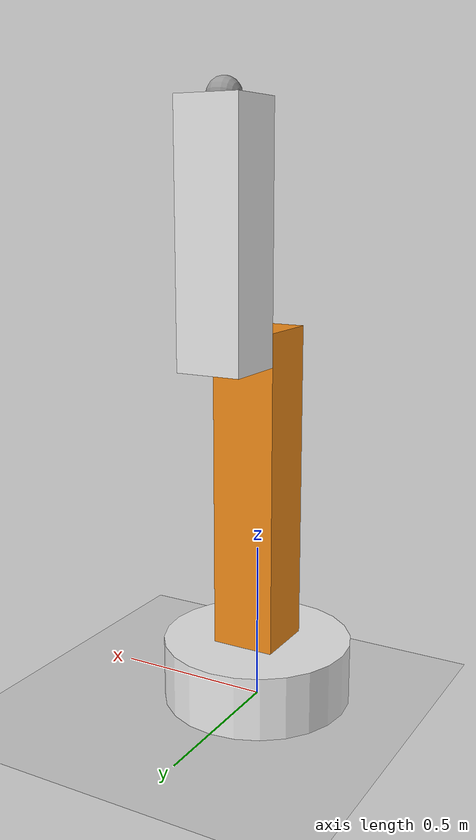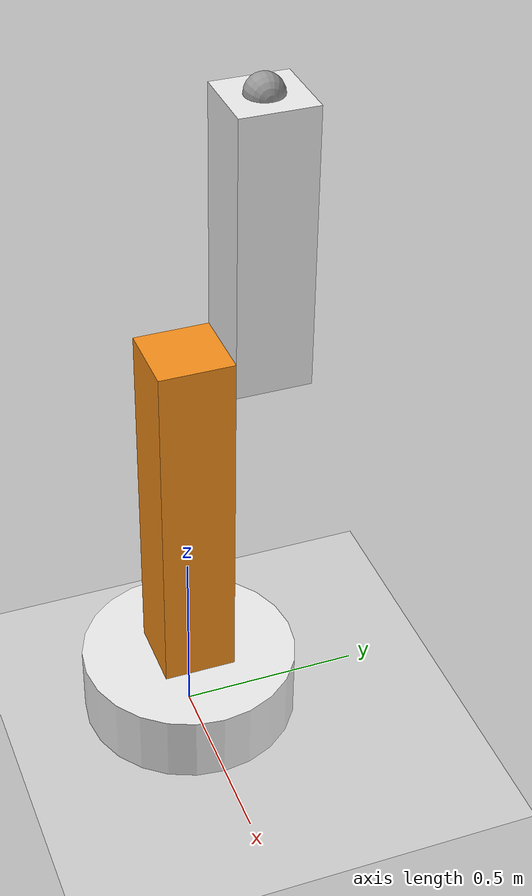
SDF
<sdf version="1.6">
 <world name="default">
  <light name="sun" type="directional">
   <pose>0 0 10 0 -0 0</pose>
   <diffuse>0.8 0.8 0.8 1</diffuse>
   <specular>0.2 0.2 0.2 1</specular>
   <attenuation>
    <range>1000</range>
    <constant>0.9</constant>
    <linear>0.01</linear>
    <quadratic>0.001</quadratic>
   </attenuation>
   <direction>-0.5 0.1 -0.9</direction>
  </light>
  <model name="ground_plane">
   <static>1</static>
   <link name="link">
    <collision name="collision">
     <geometry><plane><normal>0 0 1</normal><size>100 100</size></plane></geometry>
     <surface><friction><ode><mu>100</mu><mu2>50</mu2></ode></friction></surface>
    </collision>
    <visual name="visual">
     <cast_shadows>0</cast_shadows>
     <geometry><plane><normal>0 0 1</normal><size>100 100</size></plane></geometry>
     <material>
      <script><uri>file://media/materials/scripts/gazebo.material</uri><name>Gazebo/Grey</name></script>
     </material>
    </visual>
   </link>
  </model>
  <gravity>0 0 -9.8</gravity>
  <magnetic_field>6e-06 2.3e-05 -4.2e-05</magnetic_field>
  <atmosphere type="adiabatic"/>
  <physics name="default_physics" default="0" type="ode">
   <max_step_size>0.001</max_step_size>
   <real_time_factor>1</real_time_factor>
   <real_time_update_rate>1000</real_time_update_rate>
  </physics>
  <scene><ambient>0.4 0.4 0.4 1</ambient><background>0.7 0.7 0.7 1</background><shadows>1</shadows></scene>
  <spherical_coordinates>
   <surface_model>EARTH_WGS84</surface_model>
   <latitude_deg>0</latitude_deg>
   <longitude_deg>0</longitude_deg>
   <elevation>0</elevation>
   <heading_deg>0</heading_deg>
  </spherical_coordinates>
  <model name="simple_arm">
   <link name="base_link">
    <inertial>
     <pose>0 0 0.1 0 -0 0</pose>
     <mass>50</mass>
     <inertia><ixx>1.66667</ixx><ixy>0</ixy><ixz>0</ixz><iyy>1.66667</iyy><iyz>0</iyz><izz>3</izz></inertia>
    </inertial>
    <collision name="base_link_collision">
     <pose>0 0 0.1 0 -0 0</pose>
     <geometry><cylinder><length>0.2</length><radius>0.3</radius></cylinder></geometry>
    </collision>
    <visual name="base_link_visual">
     <pose>0 0 0.1 0 -0 0</pose>
     <geometry><cylinder><length>0.2</length><radius>0.3</radius></cylinder></geometry>
     <material>
      <script><name>Gazebo/White</name><uri>file://media/materials/scripts/gazebo.material</uri></script>
     </material>
    </visual>
   </link>
   <joint name="fixed_base_joint" type="revolute">
    <child>base_link</child>
    <parent>world</parent>
    <axis>
     <limit><lower>0</lower><upper>0</upper></limit>
     <dynamics>
      <damping>0</damping>
      <friction>0</friction>
      <spring_reference>0</spring_reference>
      <spring_stiffness>0</spring_stiffness>
     </dynamics>
     <use_parent_model_frame>1</use_parent_model_frame>
     <xyz>0 0 1</xyz>
    </axis>
   </joint>
   <link name="link_1">
    <pose>0 0 0.2 0 -0 0</pose>
    <inertial>
     <pose>0 0 0.5 0 -0 0</pose>
     <mass>10</mass>
     <inertia>
      <ixx>0.866667</ixx>
      <ixy>0</ixy>
      <ixz>0</ixz>
      <iyy>0.866667</iyy>
      <iyz>0</iyz>
      <izz>0.0666667</izz>
     </inertia>
    </inertial>
    <collision name="link_1_collision">
     <pose>0 0 0.5 0 -0 0</pose>
     <geometry><box><size>0.2 0.2 1</size></box></geometry>
     <surface><friction><ode><mu>0.2</mu><mu2>0.2</mu2></ode></friction></surface>
    </collision>
    <visual name="link_1_visual">
     <pose>0 0 0.5 0 -0 0</pose>
     <geometry><box><size>0.2 0.2 1</size></box></geometry>
     <material>
      <script><name>Gazebo/Orange</name><uri>file://media/materials/scripts/gazebo.material</uri></script>
     </material>
    </visual>
   </link>
   <joint name="joint_1" type="revolute">
    <child>link_1</child>
    <parent>base_link</parent>
    <axis>
     <xyz>0 0 1</xyz>
     <limit><lower>-1e+16</lower><upper>1e+16</upper></limit>
     <dynamics><spring_reference>0</spring_reference><spring_stiffness>0</spring_stiffness></dynamics>
     <use_parent_model_frame>1</use_parent_model_frame>
    </axis>
   </joint>
   <link name="link_2">
    <pose>0 0.2 1.1 0 -0 0</pose>
    <inertial>
     <pose>0 0 0.375004 0 -0 0</pose>
     <mass>1.00001</mass>
     <inertia>
      <ixx>0.0502107</ixx>
      <ixy>0</ixy>
      <ixz>0</ixz>
      <iyy>0.0502107</iyy>
      <iyz>0</iyz>
      <izz>0.00666767</izz>
     </inertia>
    </inertial>
    <collision name="link_2_collision">
     <pose>0 0 0.375 0 -0 0</pose>
     <geometry><box><size>0.2 0.2 0.75</size></box></geometry>
     <surface><friction><ode><mu>0.2</mu><mu2>0.2</mu2></ode></friction></surface>
    </collision>
    <collision name="link_2_fixed_joint_lump__camera_link_collision_1">
     <pose>0 0 0.75 3.14159 -1.57079 3.14159</pose>
     <geometry><sphere><radius>0.05</radius></sphere></geometry>
    </collision>
    <visual name="link_2_visual">
     <pose>0 0 0.375 0 -0 0</pose>
     <geometry><box><size>0.2 0.2 0.75</size></box></geometry>
     <material>
      <script><name>Gazebo/White</name><uri>file://media/materials/scripts/gazebo.material</uri></script>
     </material>
    </visual>
    <visual name="link_2_fixed_joint_lump__camera_link_visual_1">
     <pose>0 0 0.75 3.14159 -1.57079 3.14159</pose>
     <geometry><sphere><radius>0.05</radius></sphere></geometry>
     <material>
      <script><name>Gazebo/Grey</name><uri>file://media/materials/scripts/gazebo.material</uri></script>
     </material>
    </visual>
    <sensor name="rgb_camera" type="camera">
     <update_rate>30</update_rate>
     <camera name="rgb_camera">
      <horizontal_fov>1.4</horizontal_fov>
      <image><width>640</width><height>480</height><format>R8G8B8</format></image>
      <clip><near>0.02</near><far>300</far></clip>
     </camera>
     <plugin name="camera_controller" filename="libgazebo_ros_camera.so">
      <alwaysOn>true</alwaysOn>
      <updateRate>0.0</updateRate>
      <cameraName>rgb_camera</cameraName>
      <imageTopicName>image_raw</imageTopicName>
      <cameraInfoTopicName>camera_info</cameraInfoTopicName>
      <frameName>camera_link</frameName>
      <hackBaseline>0.0</hackBaseline>
      <distortionK1>0.0</distortionK1>
      <distortionK2>0.0</distortionK2>
      <distortionK3>0.0</distortionK3>
      <distortionT1>0.0</distortionT1>
      <distortionT2>0.0</distortionT2>
      <robotNamespace>/</robotNamespace>
     </plugin>
     <pose>0 0 0.75 3.14159 -1.57079 3.14159</pose>
    </sensor>
   </link>
   <joint name="joint_2" type="revolute">
    <child>link_2</child>
    <parent>link_1</parent>
    <axis>
     <xyz>0 1 0</xyz>
     <limit><lower>-1e+16</lower><upper>1e+16</upper></limit>
     <dynamics><spring_reference>0</spring_reference><spring_stiffness>0</spring_stiffness></dynamics>
     <use_parent_model_frame>1</use_parent_model_frame>
    </axis>
   </joint>
   <static>0</static>
   <plugin name="gazebo_ros_control" filename="libgazebo_ros_control.so">
    <robotNamespace>/simple_arm</robotNamespace>
    <robotSimType>gazebo_ros_control/DefaultRobotHWSim</robotSimType>
   </plugin>
  </model>
 </world>
</sdf>
